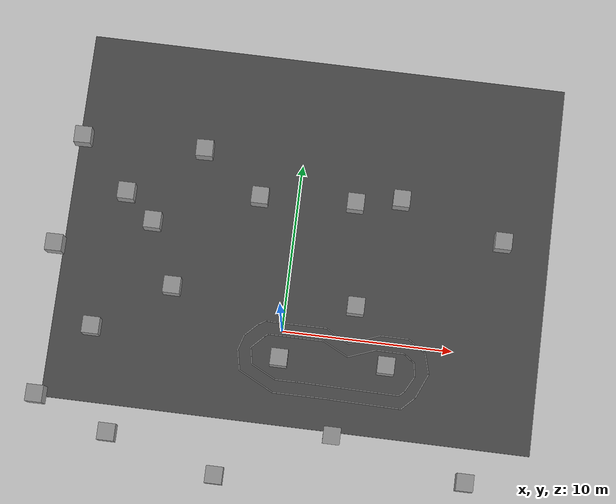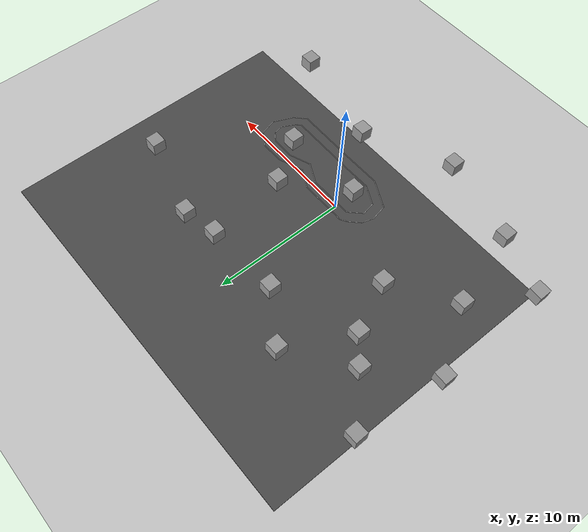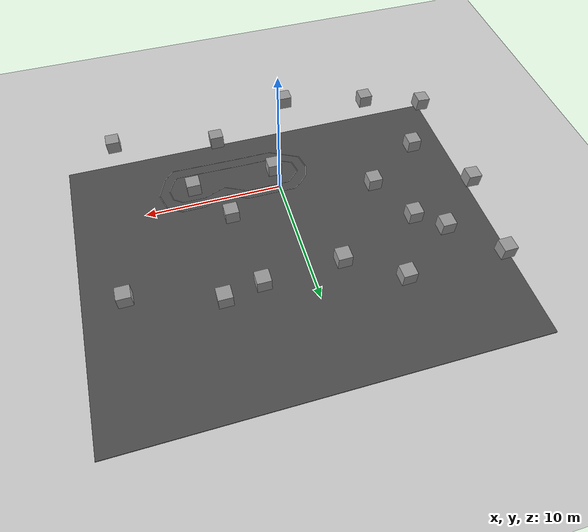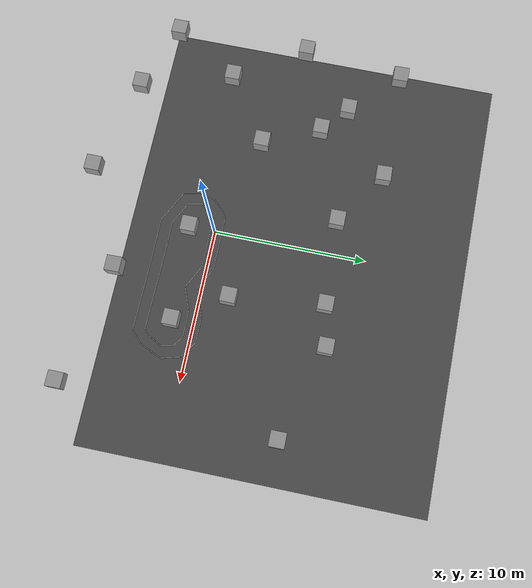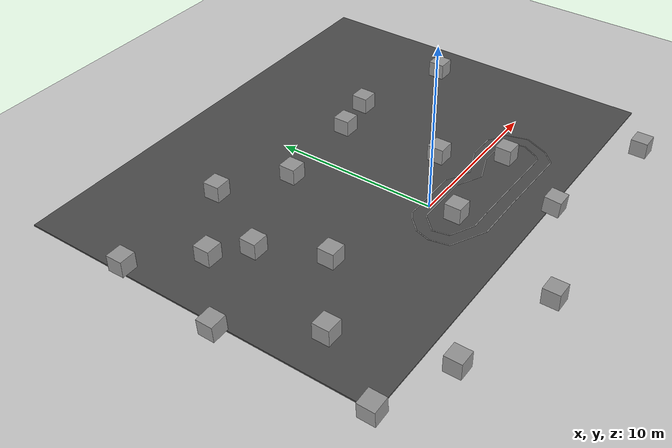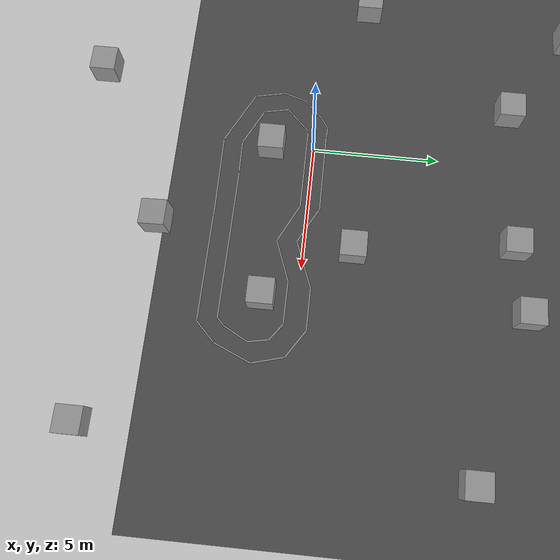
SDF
<sdf version="1.6">
 <world name="default">
  <light name="sun" type="directional">
   <pose>0 0 100 0 -0 0</pose>
   <diffuse>0.8 0.8 0.8 1</diffuse>
   <specular>0.1 0.1 0.1 1</specular>
   <attenuation>
    <range>1000</range>
    <constant>0.9</constant>
    <linear>0.01</linear>
    <quadratic>0.001</quadratic>
   </attenuation>
   <direction>-0.5 0.5 -1</direction>
  </light>
  <model name="ground_plane">
   <static>1</static>
   <link name="link">
    <collision name="collision">
     <geometry><plane><normal>0 0 1</normal><size>100 100</size></plane></geometry>
     <surface><friction><ode><mu>100</mu><mu2>50</mu2></ode></friction></surface>
    </collision>
    <visual name="visual">
     <cast_shadows>0</cast_shadows>
     <geometry><plane><normal>0 0 1</normal><size>100 100</size></plane></geometry>
     <material>
      <script><uri>file://media/materials/scripts/gazebo.material</uri><name>Gazebo/Grey</name></script>
     </material>
    </visual>
   </link>
  </model>
  <gravity>0 0 -9.8</gravity>
  <magnetic_field>6e-06 2.3e-05 -4.2e-05</magnetic_field>
  <atmosphere type="adiabatic"/>
  <physics name="default_physics" default="0" type="ode">
   <max_step_size>0.001</max_step_size>
   <real_time_factor>1</real_time_factor>
   <real_time_update_rate>1000</real_time_update_rate>
  </physics>
  <scene><ambient>0.4 0.4 0.4 1</ambient><background>0.7 0.7 0.7 1</background><shadows>1</shadows></scene>
  <spherical_coordinates>
   <surface_model>EARTH_WGS84</surface_model>
   <latitude_deg>0</latitude_deg>
   <longitude_deg>0</longitude_deg>
   <elevation>0</elevation>
   <heading_deg>0</heading_deg>
  </spherical_coordinates>
  <model name="asphalt_plane">
   <static>1</static>
   <link name="link">
    <collision name="collision"><geometry><box><size>28.54 22.04 0.1</size></box></geometry></collision>
    <visual name="visual">
     <cast_shadows>0</cast_shadows>
     <geometry><box><size>28.54 22.04 0.1</size></box></geometry>
     <material>
      <script>
       <uri>model://asphalt_plane/materials/scripts</uri>
       <uri>model://asphalt_plane/materials/textures</uri>
       <name>vrc/asphalt</name>
      </script>
     </material>
    </visual>
   </link>
   <pose>0.809413 5.50418 0 0 -0 0</pose>
  </model>
  <audio><device>default</device></audio>
  <model name="unit_box">
   <pose>-9.27289 -7.14199 0.5 0 -0 0.000227</pose>
   <link name="link">
    <inertial>
     <mass>1</mass>
     <inertia>
      <ixx>0.166667</ixx>
      <ixy>0</ixy>
      <ixz>0</ixz>
      <iyy>0.166667</iyy>
      <iyz>0</iyz>
      <izz>0.166667</izz>
     </inertia>
    </inertial>
    <collision name="collision"><geometry><box><size>1 1 1</size></box></geometry></collision>
    <visual name="visual">
     <geometry><box><size>1 1 1</size></box></geometry>
     <material>
      <script><name>Gazebo/Grey</name><uri>file://media/materials/scripts/gazebo.material</uri></script>
     </material>
    </visual>
   </link>
  </model>
  <model name="unit_box_clone">
   <pose>-2.81406 -8.82207 0.5 0 -0 0.000187</pose>
   <link name="link">
    <inertial>
     <mass>1</mass>
     <inertia>
      <ixx>0.166667</ixx>
      <ixy>0</ixy>
      <ixz>0</ixz>
      <iyy>0.166667</iyy>
      <iyz>0</iyz>
      <izz>0.166667</izz>
     </inertia>
    </inertial>
    <collision name="collision"><geometry><box><size>1 1 1</size></box></geometry></collision>
    <visual name="visual">
     <geometry><box><size>1 1 1</size></box></geometry>
     <material>
      <script><name>Gazebo/Grey</name><uri>file://media/materials/scripts/gazebo.material</uri></script>
     </material>
    </visual>
   </link>
  </model>
  <model name="unit_box_clone_0">
   <pose>3.59645 -5.74569 0.534706 0.07207 -0 0</pose>
   <link name="link">
    <inertial>
     <mass>1</mass>
     <inertia>
      <ixx>0.166667</ixx>
      <ixy>0</ixy>
      <ixz>0</ixz>
      <iyy>0.166667</iyy>
      <iyz>0</iyz>
      <izz>0.166667</izz>
     </inertia>
    </inertial>
    <collision name="collision"><geometry><box><size>1 1 1</size></box></geometry></collision>
    <visual name="visual">
     <geometry><box><size>1 1 1</size></box></geometry>
     <material>
      <script><name>Gazebo/Grey</name><uri>file://media/materials/scripts/gazebo.material</uri></script>
     </material>
    </visual>
   </link>
  </model>
  <model name="unit_box_clone_1">
   <pose>11.4526 -7.49623 0.5 0 -0 0.000188</pose>
   <link name="link">
    <inertial>
     <mass>1</mass>
     <inertia>
      <ixx>0.166667</ixx>
      <ixy>0</ixy>
      <ixz>0</ixz>
      <iyy>0.166667</iyy>
      <iyz>0</iyz>
      <izz>0.166667</izz>
     </inertia>
    </inertial>
    <collision name="collision"><geometry><box><size>1 1 1</size></box></geometry></collision>
    <visual name="visual">
     <geometry><box><size>1 1 1</size></box></geometry>
     <material>
      <script><name>Gazebo/Grey</name><uri>file://media/materials/scripts/gazebo.material</uri></script>
     </material>
    </visual>
   </link>
  </model>
  <model name="unit_box_clone_2">
   <pose>6.23327 -1.37491 0.549995 -1e-05 0 0.000189</pose>
   <link name="link">
    <inertial>
     <mass>1</mass>
     <inertia>
      <ixx>0.166667</ixx>
      <ixy>0</ixy>
      <ixz>0</ixz>
      <iyy>0.166667</iyy>
      <iyz>0</iyz>
      <izz>0.166667</izz>
     </inertia>
    </inertial>
    <collision name="collision"><geometry><box><size>1 1 1</size></box></geometry></collision>
    <visual name="visual">
     <geometry><box><size>1 1 1</size></box></geometry>
     <material>
      <script><name>Gazebo/Grey</name><uri>file://media/materials/scripts/gazebo.material</uri></script>
     </material>
    </visual>
   </link>
  </model>
  <model name="unit_box_clone_3">
   <pose>12.2576 6.74362 0.549995 -1e-05 0 0.000144</pose>
   <link name="link">
    <inertial>
     <mass>1</mass>
     <inertia>
      <ixx>0.166667</ixx>
      <ixy>0</ixy>
      <ixz>0</ixz>
      <iyy>0.166667</iyy>
      <iyz>0</iyz>
      <izz>0.166667</izz>
     </inertia>
    </inertial>
    <collision name="collision"><geometry><box><size>1 1 1</size></box></geometry></collision>
    <visual name="visual">
     <geometry><box><size>1 1 1</size></box></geometry>
     <material>
      <script><name>Gazebo/Grey</name><uri>file://media/materials/scripts/gazebo.material</uri></script>
     </material>
    </visual>
   </link>
  </model>
  <model name="unit_box_clone_4">
   <pose>6.04477 8.55613 0.549995 -1e-05 0 0.00021</pose>
   <link name="link">
    <inertial>
     <mass>1</mass>
     <inertia>
      <ixx>0.166667</ixx>
      <ixy>0</ixy>
      <ixz>0</ixz>
      <iyy>0.166667</iyy>
      <iyz>0</iyz>
      <izz>0.166667</izz>
     </inertia>
    </inertial>
    <collision name="collision"><geometry><box><size>1 1 1</size></box></geometry></collision>
    <visual name="visual">
     <geometry><box><size>1 1 1</size></box></geometry>
     <material>
      <script><name>Gazebo/Grey</name><uri>file://media/materials/scripts/gazebo.material</uri></script>
     </material>
    </visual>
   </link>
  </model>
  <model name="unit_box_clone_6">
   <pose>0.026014 -1.65955 0.549995 -1e-05 0 0.000249</pose>
   <link name="link">
    <inertial>
     <mass>1</mass>
     <inertia>
      <ixx>0.166667</ixx>
      <ixy>0</ixy>
      <ixz>0</ixz>
      <iyy>0.166667</iyy>
      <iyz>0</iyz>
      <izz>0.166667</izz>
     </inertia>
    </inertial>
    <collision name="collision"><geometry><box><size>1 1 1</size></box></geometry></collision>
    <visual name="visual">
     <geometry><box><size>1 1 1</size></box></geometry>
     <material>
      <script><name>Gazebo/Grey</name><uri>file://media/materials/scripts/gazebo.material</uri></script>
     </material>
    </visual>
   </link>
  </model>
  <model name="unit_box_clone_7">
   <pose>-6.71245 1.78807 0.549995 -1e-05 0 0.000212</pose>
   <link name="link">
    <inertial>
     <mass>1</mass>
     <inertia>
      <ixx>0.166667</ixx>
      <ixy>0</ixy>
      <ixz>0</ixz>
      <iyy>0.166667</iyy>
      <iyz>0</iyz>
      <izz>0.166667</izz>
     </inertia>
    </inertial>
    <collision name="collision"><geometry><box><size>1 1 1</size></box></geometry></collision>
    <visual name="visual">
     <geometry><box><size>1 1 1</size></box></geometry>
     <material>
      <script><name>Gazebo/Grey</name><uri>file://media/materials/scripts/gazebo.material</uri></script>
     </material>
    </visual>
   </link>
  </model>
  <model name="unit_box_clone_8">
   <pose>-8.3777 5.49635 0.549995 -1e-05 -0 0.000211</pose>
   <link name="link">
    <inertial>
     <mass>1</mass>
     <inertia>
      <ixx>0.166667</ixx>
      <ixy>0</ixy>
      <ixz>0</ixz>
      <iyy>0.166667</iyy>
      <iyz>0</iyz>
      <izz>0.166667</izz>
     </inertia>
    </inertial>
    <collision name="collision"><geometry><box><size>1 1 1</size></box></geometry></collision>
    <visual name="visual">
     <geometry><box><size>1 1 1</size></box></geometry>
     <material>
      <script><name>Gazebo/Grey</name><uri>file://media/materials/scripts/gazebo.material</uri></script>
     </material>
    </visual>
   </link>
  </model>
  <model name="unit_box_clone_9">
   <pose>4.10321 1.88722 0.549995 -1e-05 -0 0.000216</pose>
   <link name="link">
    <inertial>
     <mass>1</mass>
     <inertia>
      <ixx>0.166667</ixx>
      <ixy>0</ixy>
      <ixz>0</ixz>
      <iyy>0.166667</iyy>
      <iyz>0</iyz>
      <izz>0.166667</izz>
     </inertia>
    </inertial>
    <collision name="collision"><geometry><box><size>1 1 1</size></box></geometry></collision>
    <visual name="visual">
     <geometry><box><size>1 1 1</size></box></geometry>
     <material>
      <script><name>Gazebo/Grey</name><uri>file://media/materials/scripts/gazebo.material</uri></script>
     </material>
    </visual>
   </link>
  </model>
  <model name="unit_box_clone_10">
   <pose>3.37405 8.0364 0.549995 -1e-05 0 0.00021</pose>
   <link name="link">
    <inertial>
     <mass>1</mass>
     <inertia>
      <ixx>0.166667</ixx>
      <ixy>0</ixy>
      <ixz>0</ixz>
      <iyy>0.166667</iyy>
      <iyz>0</iyz>
      <izz>0.166667</izz>
     </inertia>
    </inertial>
    <collision name="collision"><geometry><box><size>1 1 1</size></box></geometry></collision>
    <visual name="visual">
     <geometry><box><size>1 1 1</size></box></geometry>
     <material>
      <script><name>Gazebo/Grey</name><uri>file://media/materials/scripts/gazebo.material</uri></script>
     </material>
    </visual>
   </link>
  </model>
  <model name="unit_box_clone_11">
   <pose>-2.28629 7.73139 0.549995 -1e-05 0 0.000209</pose>
   <link name="link">
    <inertial>
     <mass>1</mass>
     <inertia>
      <ixx>0.166667</ixx>
      <ixy>0</ixy>
      <ixz>0</ixz>
      <iyy>0.166667</iyy>
      <iyz>0</iyz>
      <izz>0.166667</izz>
     </inertia>
    </inertial>
    <collision name="collision"><geometry><box><size>1 1 1</size></box></geometry></collision>
    <visual name="visual">
     <geometry><box><size>1 1 1</size></box></geometry>
     <material>
      <script><name>Gazebo/Grey</name><uri>file://media/materials/scripts/gazebo.material</uri></script>
     </material>
    </visual>
   </link>
  </model>
  <model name="unit_box_clone_12">
   <pose>-5.90982 10.1694 0.55 0 -0 0.029125</pose>
   <link name="link">
    <inertial>
     <mass>1</mass>
     <inertia>
      <ixx>0.166667</ixx>
      <ixy>0</ixy>
      <ixz>0</ixz>
      <iyy>0.166667</iyy>
      <iyz>0</iyz>
      <izz>0.166667</izz>
     </inertia>
    </inertial>
    <collision name="collision"><geometry><box><size>1 1 1</size></box></geometry></collision>
    <visual name="visual">
     <geometry><box><size>1 1 1</size></box></geometry>
     <material>
      <script><name>Gazebo/Grey</name><uri>file://media/materials/scripts/gazebo.material</uri></script>
     </material>
    </visual>
   </link>
  </model>
  <model name="unit_box_clone_13">
   <pose>-10.1616 7.04333 0.549995 -1e-05 -0 0.000208</pose>
   <link name="link">
    <inertial>
     <mass>1</mass>
     <inertia>
      <ixx>0.166667</ixx>
      <ixy>0</ixy>
      <ixz>0</ixz>
      <iyy>0.166667</iyy>
      <iyz>0</iyz>
      <izz>0.166667</izz>
     </inertia>
    </inertial>
    <collision name="collision"><geometry><box><size>1 1 1</size></box></geometry></collision>
    <visual name="visual">
     <geometry><box><size>1 1 1</size></box></geometry>
     <material>
      <script><name>Gazebo/Grey</name><uri>file://media/materials/scripts/gazebo.material</uri></script>
     </material>
    </visual>
   </link>
  </model>
  <model name="unit_box_clone_14">
   <pose>-13.8998 3.44646 0.526698 0.000231 -0.054708 -0.004202</pose>
   <link name="link">
    <inertial>
     <mass>1</mass>
     <inertia>
      <ixx>0.166667</ixx>
      <ixy>0</ixy>
      <ixz>0</ixz>
      <iyy>0.166667</iyy>
      <iyz>0</iyz>
      <izz>0.166667</izz>
     </inertia>
    </inertial>
    <collision name="collision"><geometry><box><size>1 1 1</size></box></geometry></collision>
    <visual name="visual">
     <geometry><box><size>1 1 1</size></box></geometry>
     <material>
      <script><name>Gazebo/Grey</name><uri>file://media/materials/scripts/gazebo.material</uri></script>
     </material>
    </visual>
   </link>
  </model>
  <model name="unit_box_clone_15">
   <pose>-13.1962 10.1008 0.550004 1e-05 4e-06 0.019816</pose>
   <link name="link">
    <inertial>
     <mass>1</mass>
     <inertia>
      <ixx>0.166667</ixx>
      <ixy>0</ixy>
      <ixz>0</ixz>
      <iyy>0.166667</iyy>
      <iyz>0</iyz>
      <izz>0.166667</izz>
     </inertia>
    </inertial>
    <collision name="collision"><geometry><box><size>1 1 1</size></box></geometry></collision>
    <visual name="visual">
     <geometry><box><size>1 1 1</size></box></geometry>
     <material>
      <script><name>Gazebo/Grey</name><uri>file://media/materials/scripts/gazebo.material</uri></script>
     </material>
    </visual>
   </link>
  </model>
  <model name="unit_box_clone_16">
   <pose>-11.0571 -1.13421 0.549995 -1e-05 -0 0.000208</pose>
   <link name="link">
    <inertial>
     <mass>1</mass>
     <inertia>
      <ixx>0.166667</ixx>
      <ixy>0</ixy>
      <ixz>0</ixz>
      <iyy>0.166667</iyy>
      <iyz>0</iyz>
      <izz>0.166667</izz>
     </inertia>
    </inertial>
    <collision name="collision"><geometry><box><size>1 1 1</size></box></geometry></collision>
    <visual name="visual">
     <geometry><box><size>1 1 1</size></box></geometry>
     <material>
      <script><name>Gazebo/Grey</name><uri>file://media/materials/scripts/gazebo.material</uri></script>
     </material>
    </visual>
   </link>
  </model>
  <model name="unit_box_clone_17">
   <pose>-13.6633 -5.46546 0.536148 -0 -0.075193 1.7e-05</pose>
   <link name="link">
    <inertial>
     <mass>1</mass>
     <inertia>
      <ixx>0.166667</ixx>
      <ixy>0</ixy>
      <ixz>0</ixz>
      <iyy>0.166667</iyy>
      <iyz>0</iyz>
      <izz>0.166667</izz>
     </inertia>
    </inertial>
    <collision name="collision"><geometry><box><size>1 1 1</size></box></geometry></collision>
    <visual name="visual">
     <geometry><box><size>1 1 1</size></box></geometry>
     <material>
      <script><name>Gazebo/Grey</name><uri>file://media/materials/scripts/gazebo.material</uri></script>
     </material>
    </visual>
   </link>
  </model>
  <model name="unit_box_0">
   <pose>0.855716 -0.285887 0.051559 -8.3e-05 -0.002348 -0.002297</pose>
   <link name="link">
    <inertial>
     <mass>1</mass>
     <inertia>
      <ixx>0.166667</ixx>
      <ixy>0</ixy>
      <ixz>0</ixz>
      <iyy>0.166667</iyy>
      <iyz>0</iyz>
      <izz>0.166667</izz>
     </inertia>
    </inertial>
    <collision name="collision"><geometry><box><size>3.29447 0.057326 0.004435</size></box></geometry></collision>
    <visual name="visual">
     <geometry><box><size>3.29447 0.057326 0.004435</size></box></geometry>
     <material>
      <script><name>Gazebo/Grey</name><uri>file://media/materials/scripts/gazebo.material</uri></script>
     </material>
    </visual>
   </link>
  </model>
  <model name="unit_box_0_clone">
   <pose>0.98316 0.474558 0.054447 -0.000904 -0.001392 0.004603</pose>
   <link name="link">
    <inertial>
     <mass>1</mass>
     <inertia>
      <ixx>0.166667</ixx>
      <ixy>0</ixy>
      <ixz>0</ixz>
      <iyy>0.166667</iyy>
      <iyz>0</iyz>
      <izz>0.166667</izz>
     </inertia>
    </inertial>
    <collision name="collision"><geometry><box><size>3.17943 0.057326 0.004435</size></box></geometry></collision>
    <visual name="visual">
     <geometry><box><size>3.17943 0.057326 0.004435</size></box></geometry>
     <material>
      <script><name>Gazebo/Grey</name><uri>file://media/materials/scripts/gazebo.material</uri></script>
     </material>
    </visual>
   </link>
  </model>
  <model name="unit_box_0_clone_clone">
   <pose>4.87173 0.087567 0.05447 5e-06 0.002305 0.36987</pose>
   <link name="link">
    <inertial>
     <mass>1</mass>
     <inertia>
      <ixx>0.166667</ixx>
      <ixy>0</ixy>
      <ixz>0</ixz>
      <iyy>0.166667</iyy>
      <iyz>0</iyz>
      <izz>0.166667</izz>
     </inertia>
    </inertial>
    <collision name="collision"><geometry><box><size>1.97964 0.057326 0.004435</size></box></geometry></collision>
    <visual name="visual">
     <geometry><box><size>1.97964 0.057326 0.004435</size></box></geometry>
     <material>
      <script><name>Gazebo/Grey</name><uri>file://media/materials/scripts/gazebo.material</uri></script>
     </material>
    </visual>
   </link>
  </model>
  <model name="unit_box_0_clone_clone_clone">
   <pose>4.78453 -0.743299 0.054493 0.001069 0.002553 0.360291</pose>
   <link name="link">
    <inertial>
     <mass>1</mass>
     <inertia>
      <ixx>0.166667</ixx>
      <ixy>0</ixy>
      <ixz>0</ixz>
      <iyy>0.166667</iyy>
      <iyz>0</iyz>
      <izz>0.166667</izz>
     </inertia>
    </inertial>
    <collision name="collision"><geometry><box><size>1.75867 0.057326 0.004435</size></box></geometry></collision>
    <visual name="visual">
     <geometry><box><size>1.75867 0.057326 0.004435</size></box></geometry>
     <material>
      <script><name>Gazebo/Grey</name><uri>file://media/materials/scripts/gazebo.material</uri></script>
     </material>
    </visual>
   </link>
  </model>
  <model name="unit_box_0_clone_clone_clone_0">
   <pose>6.4184 -0.453547 0.054044 7.4e-05 0.003278 -0.008242</pose>
   <link name="link">
    <inertial>
     <mass>1</mass>
     <inertia>
      <ixx>0.166667</ixx>
      <ixy>0</ixy>
      <ixz>0</ixz>
      <iyy>0.166667</iyy>
      <iyz>0</iyz>
      <izz>0.166667</izz>
     </inertia>
    </inertial>
    <collision name="collision"><geometry><box><size>1.63077 0.057326 0.004435</size></box></geometry></collision>
    <visual name="visual">
     <geometry><box><size>1.63077 0.057326 0.004435</size></box></geometry>
     <material>
      <script><name>Gazebo/Grey</name><uri>file://media/materials/scripts/gazebo.material</uri></script>
     </material>
    </visual>
   </link>
  </model>
  <model name="unit_box_0_clone_clone_clone_0_clone">
   <pose>6.57939 0.425195 0.056651 -0.001747 0.000135 -0.002337</pose>
   <link name="link">
    <inertial>
     <mass>1</mass>
     <inertia>
      <ixx>0.166667</ixx>
      <ixy>0</ixy>
      <ixz>0</ixz>
      <iyy>0.166667</iyy>
      <iyz>0</iyz>
      <izz>0.166667</izz>
     </inertia>
    </inertial>
    <collision name="collision"><geometry><box><size>1.63077 0.057326 0.004435</size></box></geometry></collision>
    <visual name="visual">
     <geometry><box><size>1.63077 0.057326 0.004435</size></box></geometry>
     <material>
      <script><name>Gazebo/Grey</name><uri>file://media/materials/scripts/gazebo.material</uri></script>
     </material>
    </visual>
   </link>
  </model>
  <model name="unit_box_0_clone_clone_clone_0_clone_0">
   <pose>7.55336 -0.689292 0.054074 8e-06 0.004541 -0.625718</pose>
   <link name="link">
    <inertial>
     <mass>1</mass>
     <inertia>
      <ixx>0.166667</ixx>
      <ixy>0</ixy>
      <ixz>0</ixz>
      <iyy>0.166667</iyy>
      <iyz>0</iyz>
      <izz>0.166667</izz>
     </inertia>
    </inertial>
    <collision name="collision">
     <geometry><box><size>0.828487 0.057326 0.004435</size></box></geometry>
    </collision>
    <visual name="visual">
     <geometry><box><size>0.828487 0.057326 0.004435</size></box></geometry>
     <material>
      <script><name>Gazebo/Grey</name><uri>file://media/materials/scripts/gazebo.material</uri></script>
     </material>
    </visual>
   </link>
  </model>
  <model name="unit_box_0_clone_clone_clone_0_clone_0_clone">
   <pose>7.92413 0.081983 0.054477 -7e-06 -0.003573 -0.580222</pose>
   <link name="link">
    <inertial>
     <mass>1</mass>
     <inertia>
      <ixx>0.166667</ixx>
      <ixy>0</ixy>
      <ixz>0</ixz>
      <iyy>0.166667</iyy>
      <iyz>0</iyz>
      <izz>0.166667</izz>
     </inertia>
    </inertial>
    <collision name="collision"><geometry><box><size>1.27585 0.057326 0.004435</size></box></geometry></collision>
    <visual name="visual">
     <geometry><box><size>1.27585 0.057326 0.004435</size></box></geometry>
     <material>
      <script><name>Gazebo/Grey</name><uri>file://media/materials/scripts/gazebo.material</uri></script>
     </material>
    </visual>
   </link>
  </model>
  <model name="unit_box_0_clone_clone_clone_0_clone_0_clone_0">
   <pose>7.94409 -1.3406 0.056707 -0.003252 -2.2e-05 -1.39081</pose>
   <link name="link">
    <inertial>
     <mass>1</mass>
     <inertia>
      <ixx>0.166667</ixx>
      <ixy>0</ixy>
      <ixz>0</ixz>
      <iyy>0.166667</iyy>
      <iyz>0</iyz>
      <izz>0.166667</izz>
     </inertia>
    </inertial>
    <collision name="collision">
     <geometry><box><size>0.828487 0.057326 0.004435</size></box></geometry>
    </collision>
    <visual name="visual">
     <geometry><box><size>0.828487 0.057326 0.004435</size></box></geometry>
     <material>
      <script><name>Gazebo/Grey</name><uri>file://media/materials/scripts/gazebo.material</uri></script>
     </material>
    </visual>
   </link>
  </model>
  <model name="unit_box_0_clone_clone_clone_0_clone_0_clone_0_clone">
   <pose>8.61763 -0.875343 0.052203 7e-06 -1.9e-05 -1.30273</pose>
   <link name="link">
    <inertial>
     <mass>1</mass>
     <inertia>
      <ixx>0.166667</ixx>
      <ixy>0</ixy>
      <ixz>0</ixz>
      <iyy>0.166667</iyy>
      <iyz>0</iyz>
      <izz>0.166667</izz>
     </inertia>
    </inertial>
    <collision name="collision"><geometry><box><size>1.29659 0.057326 0.004435</size></box></geometry></collision>
    <visual name="visual">
     <geometry><box><size>1.29659 0.057326 0.004435</size></box></geometry>
     <material>
      <script><name>Gazebo/Grey</name><uri>file://media/materials/scripts/gazebo.material</uri></script>
     </material>
    </visual>
   </link>
  </model>
  <model name="unit_box_0_clone_clone_clone_0_clone_0_clone_0_clone_0">
   <pose>7.75364 -2.19272 0.054338 -0.00098 -0.003933 -2.06022</pose>
   <link name="link">
    <inertial>
     <mass>1</mass>
     <inertia>
      <ixx>0.166667</ixx>
      <ixy>0</ixy>
      <ixz>0</ixz>
      <iyy>0.166667</iyy>
      <iyz>0</iyz>
      <izz>0.166667</izz>
     </inertia>
    </inertial>
    <collision name="collision"><geometry><box><size>1.0639 0.057326 0.004435</size></box></geometry></collision>
    <visual name="visual">
     <geometry><box><size>1.0639 0.057326 0.004435</size></box></geometry>
     <material>
      <script><name>Gazebo/Grey</name><uri>file://media/materials/scripts/gazebo.material</uri></script>
     </material>
    </visual>
   </link>
  </model>
  <model name="unit_box_0_clone_clone_clone_0_clone_0_clone_0_clone_0_clone">
   <pose>8.47956 -2.21876 0.054466 -8.4e-05 0.002846 -1.97789</pose>
   <link name="link">
    <inertial>
     <mass>1</mass>
     <inertia>
      <ixx>0.166667</ixx>
      <ixy>0</ixy>
      <ixz>0</ixz>
      <iyy>0.166667</iyy>
      <iyz>0</iyz>
      <izz>0.166667</izz>
     </inertia>
    </inertial>
    <collision name="collision"><geometry><box><size>1.61212 0.057326 0.004435</size></box></geometry></collision>
    <visual name="visual">
     <geometry><box><size>1.61212 0.057326 0.004435</size></box></geometry>
     <material>
      <script><name>Gazebo/Grey</name><uri>file://media/materials/scripts/gazebo.material</uri></script>
     </material>
    </visual>
   </link>
  </model>
  <model name="unit_box_0_clone_0">
   <pose>5.27302 -3.66587 0.05217 -0.000153 2.6e-05 -0.013219</pose>
   <link name="link">
    <inertial>
     <mass>1</mass>
     <inertia>
      <ixx>0.166667</ixx>
      <ixy>0</ixy>
      <ixz>0</ixz>
      <iyy>0.166667</iyy>
      <iyz>0</iyz>
      <izz>0.166667</izz>
     </inertia>
    </inertial>
    <collision name="collision"><geometry><box><size>4.21298 0.057326 0.004435</size></box></geometry></collision>
    <visual name="visual">
     <geometry><box><size>4.21298 0.057326 0.004435</size></box></geometry>
     <material>
      <script><name>Gazebo/Grey</name><uri>file://media/materials/scripts/gazebo.material</uri></script>
     </material>
    </visual>
   </link>
  </model>
  <model name="unit_box_0_clone_0_clone">
   <pose>4.21631 -2.89691 0.054198 -7.5e-05 -0.00219 -0.012998</pose>
   <link name="link">
    <inertial>
     <mass>1</mass>
     <inertia>
      <ixx>0.166667</ixx>
      <ixy>0</ixy>
      <ixz>0</ixz>
      <iyy>0.166667</iyy>
      <iyz>0</iyz>
      <izz>0.166667</izz>
     </inertia>
    </inertial>
    <collision name="collision"><geometry><box><size>6.04838 0.057326 0.004435</size></box></geometry></collision>
    <visual name="visual">
     <geometry><box><size>6.04838 0.057326 0.004435</size></box></geometry>
     <material>
      <script><name>Gazebo/Grey</name><uri>file://media/materials/scripts/gazebo.material</uri></script>
     </material>
    </visual>
   </link>
  </model>
  <model name="unit_box_0_clone_clone_clone_clone">
   <pose>3.24026 -0.671457 0.054418 3e-06 0.002676 -0.467451</pose>
   <link name="link">
    <inertial>
     <mass>1</mass>
     <inertia>
      <ixx>0.166667</ixx>
      <ixy>0</ixy>
      <ixz>0</ixz>
      <iyy>0.166667</iyy>
      <iyz>0</iyz>
      <izz>0.166667</izz>
     </inertia>
    </inertial>
    <collision name="collision"><geometry><box><size>1.67966 0.057326 0.004435</size></box></geometry></collision>
    <visual name="visual">
     <geometry><box><size>1.67966 0.057326 0.004435</size></box></geometry>
     <material>
      <script><name>Gazebo/Grey</name><uri>file://media/materials/scripts/gazebo.material</uri></script>
     </material>
    </visual>
   </link>
  </model>
  <model name="unit_box_0_clone_clone_clone_clone_clone">
   <pose>3.27595 0.085614 0.052193 -6.5e-05 -3.2e-05 -0.489736</pose>
   <link name="link">
    <inertial>
     <mass>1</mass>
     <inertia>
      <ixx>0.166667</ixx>
      <ixy>0</ixy>
      <ixz>0</ixz>
      <iyy>0.166667</iyy>
      <iyz>0</iyz>
      <izz>0.166667</izz>
     </inertia>
    </inertial>
    <collision name="collision"><geometry><box><size>1.63079 0.057326 0.004435</size></box></geometry></collision>
    <visual name="visual">
     <geometry><box><size>1.63079 0.057326 0.004435</size></box></geometry>
     <material>
      <script><name>Gazebo/Grey</name><uri>file://media/materials/scripts/gazebo.material</uri></script>
     </material>
    </visual>
   </link>
  </model>
  <model name="unit_box_0_clone_clone_clone_0_clone_0_clone_0_clone_0_clone_clone">
   <pose>7.77086 -3.3423 0.054462 -0.000994 -0.004373 -2.3604</pose>
   <link name="link">
    <inertial>
     <mass>1</mass>
     <inertia>
      <ixx>0.166667</ixx>
      <ixy>0</ixy>
      <ixz>0</ixz>
      <iyy>0.166667</iyy>
      <iyz>0</iyz>
      <izz>0.166667</izz>
     </inertia>
    </inertial>
    <collision name="collision"><geometry><box><size>1.0674 0.057326 0.004435</size></box></geometry></collision>
    <visual name="visual">
     <geometry><box><size>1.0674 0.057326 0.004435</size></box></geometry>
     <material>
      <script><name>Gazebo/Grey</name><uri>file://media/materials/scripts/gazebo.material</uri></script>
     </material>
    </visual>
   </link>
  </model>
  <model name="unit_box_0_clone_clone_clone_0_clone_0_clone_0_clone_0_clone_clone_clone">
   <pose>7.36526 -2.78728 0.051903 2.7e-05 -6.6e-05 -2.37993</pose>
   <link name="link">
    <inertial>
     <mass>1</mass>
     <inertia>
      <ixx>0.166667</ixx>
      <ixy>0</ixy>
      <ixz>0</ixz>
      <iyy>0.166667</iyy>
      <iyz>0</iyz>
      <izz>0.166667</izz>
     </inertia>
    </inertial>
    <collision name="collision">
     <geometry><box><size>0.420354 0.057326 0.004435</size></box></geometry>
    </collision>
    <visual name="visual">
     <geometry><box><size>0.420354 0.057326 0.004435</size></box></geometry>
     <material>
      <script><name>Gazebo/Grey</name><uri>file://media/materials/scripts/gazebo.material</uri></script>
     </material>
    </visual>
   </link>
  </model>
  <model name="unit_box_0_clone_0_clone_clone">
   <pose>1.49848 -3.63693 0.054427 -0.000381 -0.001309 0.00578</pose>
   <link name="link">
    <inertial>
     <mass>1</mass>
     <inertia>
      <ixx>0.166667</ixx>
      <ixy>0</ixy>
      <ixz>0</ixz>
      <iyy>0.166667</iyy>
      <iyz>0</iyz>
      <izz>0.166667</izz>
     </inertia>
    </inertial>
    <collision name="collision"><geometry><box><size>3.35765 0.057326 0.004435</size></box></geometry></collision>
    <visual name="visual">
     <geometry><box><size>3.35765 0.057326 0.004435</size></box></geometry>
     <material>
      <script><name>Gazebo/Grey</name><uri>file://media/materials/scripts/gazebo.material</uri></script>
     </material>
    </visual>
   </link>
  </model>
  <model name="unit_box_0_clone_clone_clone_clone_clone_0">
   <pose>-1.16392 -3.10704 0.056694 0.00012 -3.3e-05 -0.471906</pose>
   <link name="link">
    <inertial>
     <mass>1</mass>
     <inertia>
      <ixx>0.166667</ixx>
      <ixy>0</ixy>
      <ixz>0</ixz>
      <iyy>0.166667</iyy>
      <iyz>0</iyz>
      <izz>0.166667</izz>
     </inertia>
    </inertial>
    <collision name="collision"><geometry><box><size>2.3289 0.057326 0.004435</size></box></geometry></collision>
    <visual name="visual">
     <geometry><box><size>2.3289 0.057326 0.004435</size></box></geometry>
     <material>
      <script><name>Gazebo/Grey</name><uri>file://media/materials/scripts/gazebo.material</uri></script>
     </material>
    </visual>
   </link>
  </model>
  <model name="unit_box_0_clone_clone_clone_clone_clone_0_clone">
   <pose>-0.797528 -2.50663 0.052187 -5e-06 8e-06 -0.467281</pose>
   <link name="link">
    <inertial>
     <mass>1</mass>
     <inertia>
      <ixx>0.166667</ixx>
      <ixy>0</ixy>
      <ixz>0</ixz>
      <iyy>0.166667</iyy>
      <iyz>0</iyz>
      <izz>0.166667</izz>
     </inertia>
    </inertial>
    <collision name="collision"><geometry><box><size>1.64873 0.057326 0.004435</size></box></geometry></collision>
    <visual name="visual">
     <geometry><box><size>1.64873 0.057326 0.004435</size></box></geometry>
     <material>
      <script><name>Gazebo/Grey</name><uri>file://media/materials/scripts/gazebo.material</uri></script>
     </material>
    </visual>
   </link>
  </model>
  <model name="unit_box_0_clone_clone_clone_clone_clone_0_clone_clone">
   <pose>0.579228 -2.87591 0.054461 0.001302 0.003371 0.008642</pose>
   <link name="link">
    <inertial>
     <mass>1</mass>
     <inertia>
      <ixx>0.166667</ixx>
      <ixy>0</ixy>
      <ixz>0</ixz>
      <iyy>0.166667</iyy>
      <iyz>0</iyz>
      <izz>0.166667</izz>
     </inertia>
    </inertial>
    <collision name="collision"><geometry><box><size>1.30903 0.057326 0.004435</size></box></geometry></collision>
    <visual name="visual">
     <geometry><box><size>1.30903 0.057326 0.004435</size></box></geometry>
     <material>
      <script><name>Gazebo/Grey</name><uri>file://media/materials/scripts/gazebo.material</uri></script>
     </material>
    </visual>
   </link>
  </model>
  <model name="unit_box_0_clone_clone_clone_clone_clone_0_clone_clone_0">
   <pose>-1.60628 -1.65546 0.056621 3e-06 7e-05 -1.37419</pose>
   <link name="link">
    <inertial>
     <mass>1</mass>
     <inertia>
      <ixx>0.166667</ixx>
      <ixy>0</ixy>
      <ixz>0</ixz>
      <iyy>0.166667</iyy>
      <iyz>0</iyz>
      <izz>0.166667</izz>
     </inertia>
    </inertial>
    <collision name="collision"><geometry><box><size>1.06986 0.057326 0.004435</size></box></geometry></collision>
    <visual name="visual">
     <geometry><box><size>1.06986 0.057326 0.004435</size></box></geometry>
     <material>
      <script><name>Gazebo/Grey</name><uri>file://media/materials/scripts/gazebo.material</uri></script>
     </material>
    </visual>
   </link>
  </model>
  <model name="unit_box_0_clone_clone_clone_clone_clone_0_clone_clone_0_clone">
   <pose>-2.313 -2.00432 0.052218 1.6e-05 -1e-06 -1.36712</pose>
   <link name="link">
    <inertial>
     <mass>1</mass>
     <inertia>
      <ixx>0.166667</ixx>
      <ixy>0</ixy>
      <ixz>0</ixz>
      <iyy>0.166667</iyy>
      <iyz>0</iyz>
      <izz>0.166667</izz>
     </inertia>
    </inertial>
    <collision name="collision"><geometry><box><size>1.19505 0.057326 0.004435</size></box></geometry></collision>
    <visual name="visual">
     <geometry><box><size>1.19505 0.057326 0.004435</size></box></geometry>
     <material>
      <script><name>Gazebo/Grey</name><uri>file://media/materials/scripts/gazebo.material</uri></script>
     </material>
    </visual>
   </link>
  </model>
  <model name="unit_box_0_clone_clone_clone_clone_clone_0_clone_clone_0_clone_clone">
   <pose>-1.33206 -0.8081 0.0522 -2.5e-05 -1.8e-05 -2.34469</pose>
   <link name="link">
    <inertial>
     <mass>1</mass>
     <inertia>
      <ixx>0.166667</ixx>
      <ixy>0</ixy>
      <ixz>0</ixz>
      <iyy>0.166667</iyy>
      <iyz>0</iyz>
      <izz>0.166667</izz>
     </inertia>
    </inertial>
    <collision name="collision"><geometry><box><size>1.06641 0.057326 0.004435</size></box></geometry></collision>
    <visual name="visual">
     <geometry><box><size>1.06641 0.057326 0.004435</size></box></geometry>
     <material>
      <script><name>Gazebo/Grey</name><uri>file://media/materials/scripts/gazebo.material</uri></script>
     </material>
    </visual>
   </link>
  </model>
  <model name="unit_box_0_clone_clone_clone_clone_clone_0_clone_clone_0_clone_clone_clone">
   <pose>-1.82192 -0.1626 0.052093 -5e-06 9.3e-05 -2.3437</pose>
   <link name="link">
    <inertial>
     <mass>1</mass>
     <inertia>
      <ixx>0.166667</ixx>
      <ixy>0</ixy>
      <ixz>0</ixz>
      <iyy>0.166667</iyy>
      <iyz>0</iyz>
      <izz>0.166667</izz>
     </inertia>
    </inertial>
    <collision name="collision"><geometry><box><size>1.06641 0.057326 0.004435</size></box></geometry></collision>
    <visual name="visual">
     <geometry><box><size>1.06641 0.057326 0.004435</size></box></geometry>
     <material>
      <script><name>Gazebo/Grey</name><uri>file://media/materials/scripts/gazebo.material</uri></script>
     </material>
    </visual>
   </link>
  </model>
  <model name="unit_box_0_clone_clone_clone_clone_clone_0_clone_clone_0_clone_clone_clone_clone">
   <pose>-2.31079 -0.975568 0.056558 0.000113 -0.000208 -1.86197</pose>
   <link name="link">
    <inertial>
     <mass>1</mass>
     <inertia>
      <ixx>0.166667</ixx>
      <ixy>0</ixy>
      <ixz>0</ixz>
      <iyy>0.166667</iyy>
      <iyz>0</iyz>
      <izz>0.166667</izz>
     </inertia>
    </inertial>
    <collision name="collision"><geometry><box><size>1.03103 0.057326 0.004435</size></box></geometry></collision>
    <visual name="visual">
     <geometry><box><size>1.03103 0.057326 0.004435</size></box></geometry>
     <material>
      <script><name>Gazebo/Grey</name><uri>file://media/materials/scripts/gazebo.material</uri></script>
     </material>
    </visual>
   </link>
  </model>
  <model name="unit_box_0_clone_clone_clone_clone_clone_0_clone_clone_0_clone_clone_clone_clone_clone">
   <pose>-1.22098 0.354395 0.056616 6.8e-05 0.000131 -2.58059</pose>
   <link name="link">
    <inertial>
     <mass>1</mass>
     <inertia>
      <ixx>0.166667</ixx>
      <ixy>0</ixy>
      <ixz>0</ixz>
      <iyy>0.166667</iyy>
      <iyz>0</iyz>
      <izz>0.166667</izz>
     </inertia>
    </inertial>
    <collision name="collision">
     <geometry><box><size>0.535693 0.057326 0.004435</size></box></geometry>
    </collision>
    <visual name="visual">
     <geometry><box><size>0.535693 0.057326 0.004435</size></box></geometry>
     <material>
      <script><name>Gazebo/Grey</name><uri>file://media/materials/scripts/gazebo.material</uri></script>
     </material>
    </visual>
   </link>
  </model>
  <model name="unit_box_0_clone_clone_clone_clone_clone_0_clone_clone_0_clone_clone_clone_clone_clone_clone">
   <pose>-0.878867 -0.355498 0.054589 0.000423 -0.019368 -2.47065</pose>
   <link name="link">
    <inertial>
     <mass>1</mass>
     <inertia>
      <ixx>0.166667</ixx>
      <ixy>0</ixy>
      <ixz>0</ixz>
      <iyy>0.166667</iyy>
      <iyz>0</iyz>
      <izz>0.166667</izz>
     </inertia>
    </inertial>
    <collision name="collision">
     <geometry><box><size>0.243741 0.057326 0.004435</size></box></geometry>
    </collision>
    <visual name="visual">
     <geometry><box><size>0.243741 0.057326 0.004435</size></box></geometry>
     <material>
      <script><name>Gazebo/Grey</name><uri>file://media/materials/scripts/gazebo.material</uri></script>
     </material>
    </visual>
   </link>
  </model>
  <model name="unit_box_0_clone_clone_clone_clone_clone_0_clone_clone_0_clone_clone_clone_clone_clone_clone_clone">
   <pose>-0.808776 0.481649 0.052216 2e-06 9e-06 3.09938</pose>
   <link name="link">
    <inertial>
     <mass>1</mass>
     <inertia>
      <ixx>0.166667</ixx>
      <ixy>0</ixy>
      <ixz>0</ixz>
      <iyy>0.166667</iyy>
      <iyz>0</iyz>
      <izz>0.166667</izz>
     </inertia>
    </inertial>
    <collision name="collision">
     <geometry><box><size>0.392477 0.057326 0.004435</size></box></geometry>
    </collision>
    <visual name="visual">
     <geometry><box><size>0.392477 0.057326 0.004435</size></box></geometry>
     <material>
      <script><name>Gazebo/Grey</name><uri>file://media/materials/scripts/gazebo.material</uri></script>
     </material>
    </visual>
   </link>
  </model>
 </world>
</sdf>
